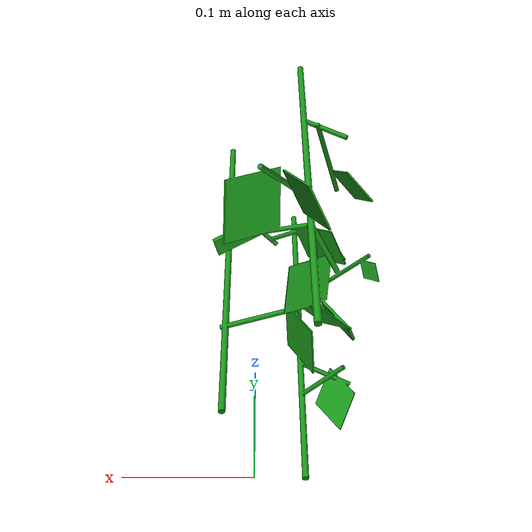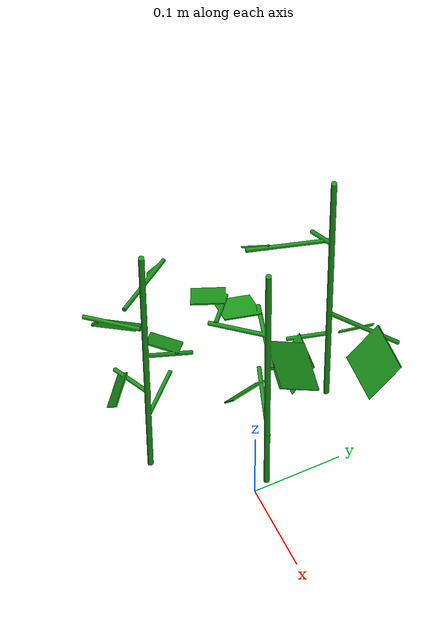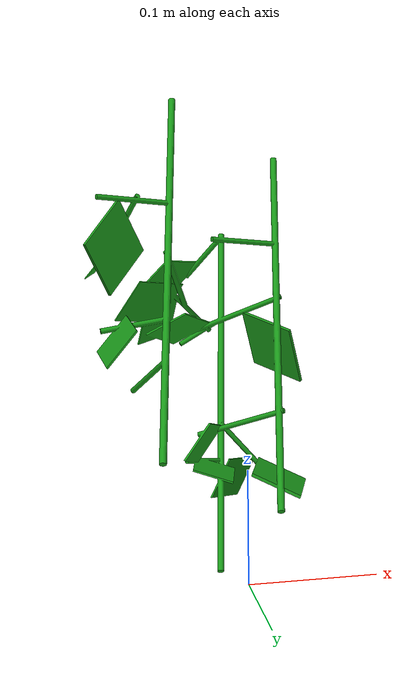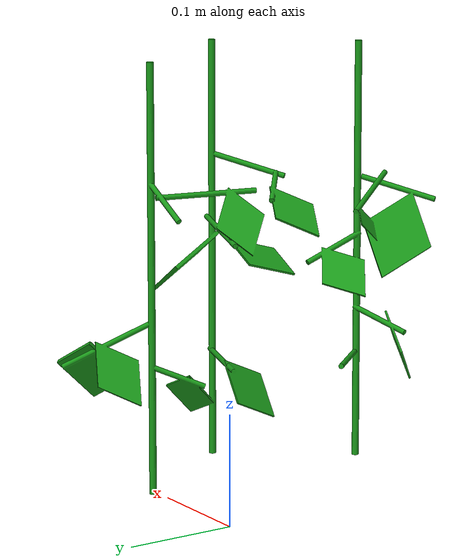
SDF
<?xml version="1.0" ?>
<sdf version="1.6">
  <model name="cucumber">
    <static>true</static>
    <pose>0 0 0 0 0 0</pose>

    <link name="link">
    <!-- tuned: visually grounded on floor (world z=0) -->
      <pose>0 0 0.06 0 0 0</pose>

      <visual name="visual">
        <geometry>
          <mesh>
            <uri>model://cucumber/meshes/cucumber_branch2.dae</uri>
            <scale>0.3 0.3 0.3</scale>
          </mesh>
        </geometry>
        <material>
          <ambient>0.05 0.35 0.05 1</ambient>
          <diffuse>0.10 0.60 0.10 1</diffuse>
          <specular>0.02 0.02 0.02 1</specular>
        </material>
      </visual>

      <!-- collisionは今は重いので、検証中は外すか簡略化が安全 -->
      <collision name="collision">
        <geometry>
          <mesh>
            <uri>model://cucumber/meshes/cucumber_branch2.dae</uri>
            <scale>0.3 0.3 0.3</scale>
          </mesh>
        </geometry>
      </collision>
    </link>
  </model>
</sdf>
